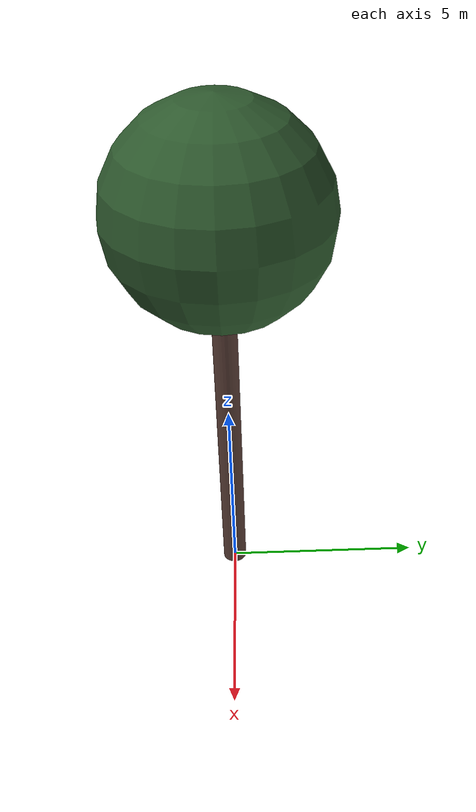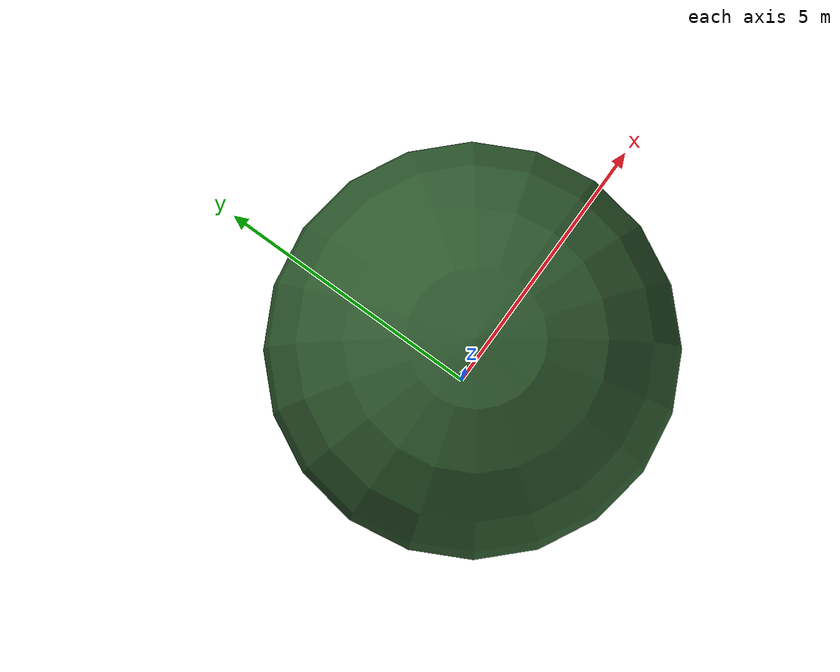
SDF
<?xml version="1.0" ?>
<sdf version="1.10">
  <model name="pin_parasol_12">
    <static>true</static>

    <!-- Tronc -->
    <link name="trunk">
      <pose>0 0 4.8686776575646515 0 0 0</pose>
      <visual name="trunk_visual">
        <geometry>
          <cylinder>
            <radius>0.31128143172355116</radius>
            <length>9.737355315129303</length>
          </cylinder>
        </geometry>
        <material>
          <ambient>0.36 0.25 0.22 1</ambient>
          <diffuse>0.36 0.25 0.22 1</diffuse>
          <specular>0.1 0.1 0.1 1</specular>
        </material>
      </visual>
      <collision name="trunk_collision">
        <geometry>
          <cylinder>
            <radius>0.31128143172355116</radius>
            <length>9.737355315129303</length>
          </cylinder>
        </geometry>
      </collision>
    </link>

    <!-- Feuillage -->
    <link name="crown">
      <pose>0 0 10.550268643389478 0 0 0</pose>
      <visual name="crown_visual">
        <geometry>
          <sphere>
              <radius>2.709711094200584</radius>
            </sphere>
        </geometry>
        <material>
          <ambient>0.18 0.35 0.18 1</ambient>
          <diffuse>0.18 0.35 0.18 1</diffuse>
          <specular>0.1 0.1 0.1 1</specular>
        </material>
      </visual>
      <collision name="crown_collision">
        <geometry>
          <sphere>
            <radius>2.1677688753604674</radius>
          </sphere>
        </geometry>
      </collision>
    </link>

    <!-- Joint tronc-feuillage -->
    <joint name="trunk_crown_joint" type="fixed">
      <parent>trunk</parent>
      <child>crown</child>
    </joint>

  </model>
</sdf>
